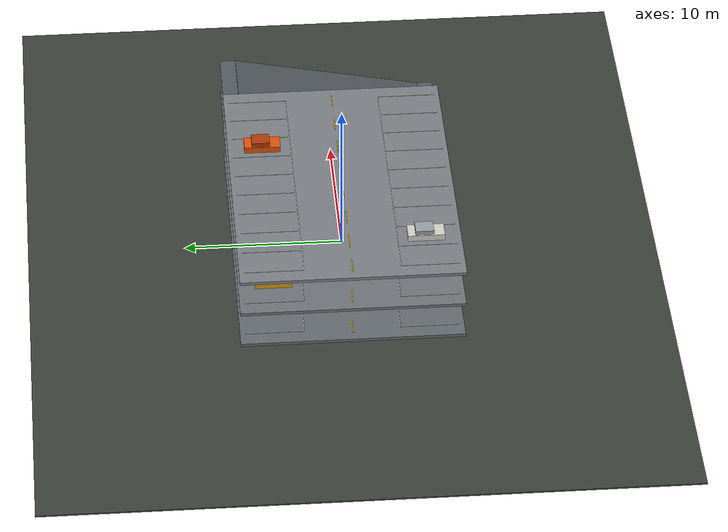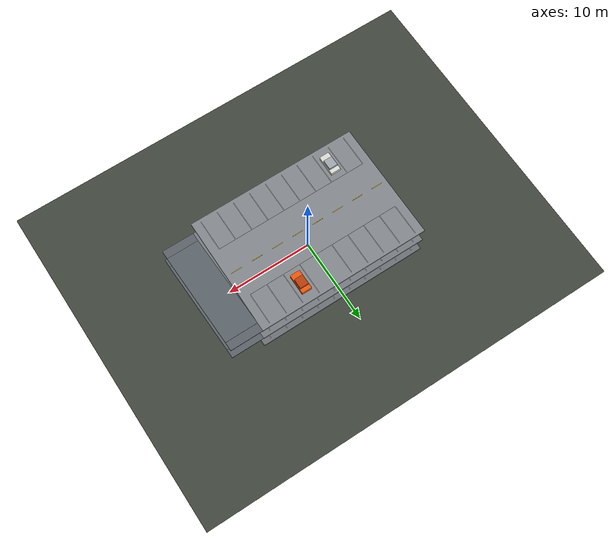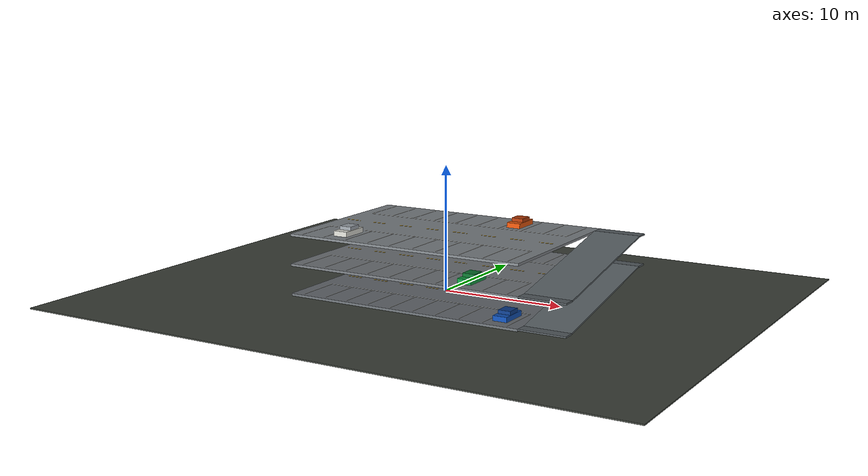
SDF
<sdf version="1.7">
 <world name="three_level_parking_garage">
  <model name="site_ground">
   <static>true</static>
   <link name="ground">
    <pose>0 0 -0.27 0 0 0</pose>
    <collision name="collision"><geometry><box><size>50 40 0.10</size></box></geometry></collision>
    <visual name="visual">
     <geometry><box><size>50 40 0.10</size></box></geometry>
     <material><ambient>0.20 0.22 0.20 1</ambient><diffuse>0.25 0.27 0.24 1</diffuse></material>
    </visual>
   </link>
  </model>
  <model name="three_level_parking_structure">
   <static>true</static>
   <link name="parking_decks">
    <collision name="floor_1_collision">
     <pose>0 0 -0.10 0 0 0</pose>
     <geometry><box><size>20 14 0.20</size></box></geometry>
     <surface><friction><ode><mu>20</mu><mu2>20</mu2></ode></friction></surface>
    </collision>
    <visual name="floor_1_visual">
     <pose>0 0 -0.10 0 0 0</pose>
     <geometry><box><size>20 14 0.20</size></box></geometry>
     <material><ambient>0.36 0.38 0.40 1</ambient><diffuse>0.42 0.44 0.46 1</diffuse></material>
    </visual>
    <collision name="floor_2_collision">
     <pose>0 0 2.30 0 0 0</pose>
     <geometry><box><size>20 14 0.20</size></box></geometry>
     <surface><friction><ode><mu>20</mu><mu2>20</mu2></ode></friction></surface>
    </collision>
    <visual name="floor_2_visual">
     <pose>0 0 2.30 0 0 0</pose>
     <geometry><box><size>20 14 0.20</size></box></geometry>
     <material><ambient>0.40 0.42 0.44 1</ambient><diffuse>0.46 0.48 0.50 1</diffuse></material>
    </visual>
    <collision name="floor_3_collision">
     <pose>0 0 4.70 0 0 0</pose>
     <geometry><box><size>20 14 0.20</size></box></geometry>
     <surface><friction><ode><mu>20</mu><mu2>20</mu2></ode></friction></surface>
    </collision>
    <visual name="floor_3_visual">
     <pose>0 0 4.70 0 0 0</pose>
     <geometry><box><size>20 14 0.20</size></box></geometry>
     <material><ambient>0.45 0.47 0.49 1</ambient><diffuse>0.51 0.53 0.55 1</diffuse></material>
    </visual>
   </link>
   <link name="ramps_and_landings">
    <collision name="ramp_12_collision">
     <pose>11.9 0 1.1412 0 -0.197396 1.570796</pose>
     <geometry><box><size>12.237648 3.8 0.12</size></box></geometry>
     <surface><friction><ode><mu>30</mu><mu2>30</mu2></ode></friction></surface>
    </collision>
    <visual name="ramp_12_visual">
     <pose>11.9 0 1.1412 0 -0.197396 1.570796</pose>
     <geometry><box><size>12.237648 3.8 0.12</size></box></geometry>
     <material><ambient>0.30 0.33 0.35 1</ambient><diffuse>0.35 0.38 0.40 1</diffuse></material>
    </visual>
    <collision name="ramp_23_collision">
     <pose>11.9 0 3.5412 0 -0.197396 1.570796</pose>
     <geometry><box><size>12.237648 3.8 0.12</size></box></geometry>
     <surface><friction><ode><mu>30</mu><mu2>30</mu2></ode></friction></surface>
    </collision>
    <visual name="ramp_23_visual">
     <pose>11.9 0 3.5412 0 -0.197396 1.570796</pose>
     <geometry><box><size>12.237648 3.8 0.12</size></box></geometry>
     <material><ambient>0.30 0.33 0.35 1</ambient><diffuse>0.35 0.38 0.40 1</diffuse></material>
    </visual>
    <collision name="ramp_12_lower_landing_collision">
     <pose>11.9 -6.5 -0.06 0 0 0</pose>
     <geometry><box><size>3.8 1.0 0.12</size></box></geometry>
    </collision>
    <visual name="ramp_12_lower_landing_visual">
     <pose>11.9 -6.5 -0.06 0 0 0</pose>
     <geometry><box><size>3.8 1.0 0.12</size></box></geometry>
     <material><ambient>0.30 0.33 0.35 1</ambient><diffuse>0.35 0.38 0.40 1</diffuse></material>
    </visual>
    <collision name="ramp_12_upper_landing_collision">
     <pose>11.9 6.5 2.34 0 0 0</pose>
     <geometry><box><size>3.8 1.0 0.12</size></box></geometry>
    </collision>
    <visual name="ramp_12_upper_landing_visual">
     <pose>11.9 6.5 2.34 0 0 0</pose>
     <geometry><box><size>3.8 1.0 0.12</size></box></geometry>
     <material><ambient>0.30 0.33 0.35 1</ambient><diffuse>0.35 0.38 0.40 1</diffuse></material>
    </visual>
    <collision name="ramp_23_lower_landing_collision">
     <pose>11.9 -6.5 2.34 0 0 0</pose>
     <geometry><box><size>3.8 1.0 0.12</size></box></geometry>
    </collision>
    <visual name="ramp_23_lower_landing_visual">
     <pose>11.9 -6.5 2.34 0 0 0</pose>
     <geometry><box><size>3.8 1.0 0.12</size></box></geometry>
     <material><ambient>0.30 0.33 0.35 1</ambient><diffuse>0.35 0.38 0.40 1</diffuse></material>
    </visual>
    <collision name="ramp_23_upper_landing_collision">
     <pose>11.9 6.5 4.74 0 0 0</pose>
     <geometry><box><size>3.8 1.0 0.12</size></box></geometry>
    </collision>
    <visual name="ramp_23_upper_landing_visual">
     <pose>11.9 6.5 4.74 0 0 0</pose>
     <geometry><box><size>3.8 1.0 0.12</size></box></geometry>
     <material><ambient>0.30 0.33 0.35 1</ambient><diffuse>0.35 0.38 0.40 1</diffuse></material>
    </visual>
   </link>
  </model>
  <model name="parking_markings">
   <static>true</static>
   <link name="markings">
    <visual name="l1_north_bay_line_1">
     <pose>-9 4.85 0.006 0 0 0</pose>
     <geometry><box><size>0.045 3.70 0.012</size></box></geometry>
     <material>
      <ambient>0.88 0.88 0.84 1</ambient>
      <diffuse>0.98 0.98 0.94 1</diffuse>
      <emissive>0.12 0.12 0.11 1</emissive>
     </material>
    </visual>
    <visual name="l1_north_bay_line_2">
     <pose>-7 4.85 0.006 0 0 0</pose>
     <geometry><box><size>0.045 3.70 0.012</size></box></geometry>
     <material>
      <ambient>0.88 0.88 0.84 1</ambient>
      <diffuse>0.98 0.98 0.94 1</diffuse>
      <emissive>0.12 0.12 0.11 1</emissive>
     </material>
    </visual>
    <visual name="l1_north_bay_line_3">
     <pose>-5 4.85 0.006 0 0 0</pose>
     <geometry><box><size>0.045 3.70 0.012</size></box></geometry>
     <material>
      <ambient>0.88 0.88 0.84 1</ambient>
      <diffuse>0.98 0.98 0.94 1</diffuse>
      <emissive>0.12 0.12 0.11 1</emissive>
     </material>
    </visual>
    <visual name="l1_north_bay_line_4">
     <pose>-3 4.85 0.006 0 0 0</pose>
     <geometry><box><size>0.045 3.70 0.012</size></box></geometry>
     <material>
      <ambient>0.88 0.88 0.84 1</ambient>
      <diffuse>0.98 0.98 0.94 1</diffuse>
      <emissive>0.12 0.12 0.11 1</emissive>
     </material>
    </visual>
    <visual name="l1_north_bay_line_5">
     <pose>-1 4.85 0.006 0 0 0</pose>
     <geometry><box><size>0.045 3.70 0.012</size></box></geometry>
     <material>
      <ambient>0.88 0.88 0.84 1</ambient>
      <diffuse>0.98 0.98 0.94 1</diffuse>
      <emissive>0.12 0.12 0.11 1</emissive>
     </material>
    </visual>
    <visual name="l1_north_bay_line_6">
     <pose>1 4.85 0.006 0 0 0</pose>
     <geometry><box><size>0.045 3.70 0.012</size></box></geometry>
     <material>
      <ambient>0.88 0.88 0.84 1</ambient>
      <diffuse>0.98 0.98 0.94 1</diffuse>
      <emissive>0.12 0.12 0.11 1</emissive>
     </material>
    </visual>
    <visual name="l1_north_bay_line_7">
     <pose>3 4.85 0.006 0 0 0</pose>
     <geometry><box><size>0.045 3.70 0.012</size></box></geometry>
     <material>
      <ambient>0.88 0.88 0.84 1</ambient>
      <diffuse>0.98 0.98 0.94 1</diffuse>
      <emissive>0.12 0.12 0.11 1</emissive>
     </material>
    </visual>
    <visual name="l1_north_bay_line_8">
     <pose>5 4.85 0.006 0 0 0</pose>
     <geometry><box><size>0.045 3.70 0.012</size></box></geometry>
     <material>
      <ambient>0.88 0.88 0.84 1</ambient>
      <diffuse>0.98 0.98 0.94 1</diffuse>
      <emissive>0.12 0.12 0.11 1</emissive>
     </material>
    </visual>
    <visual name="l1_north_bay_line_9">
     <pose>7 4.85 0.006 0 0 0</pose>
     <geometry><box><size>0.045 3.70 0.012</size></box></geometry>
     <material>
      <ambient>0.88 0.88 0.84 1</ambient>
      <diffuse>0.98 0.98 0.94 1</diffuse>
      <emissive>0.12 0.12 0.11 1</emissive>
     </material>
    </visual>
    <visual name="l1_north_bay_line_10">
     <pose>9 4.85 0.006 0 0 0</pose>
     <geometry><box><size>0.045 3.70 0.012</size></box></geometry>
     <material>
      <ambient>0.88 0.88 0.84 1</ambient>
      <diffuse>0.98 0.98 0.94 1</diffuse>
      <emissive>0.12 0.12 0.11 1</emissive>
     </material>
    </visual>
    <visual name="l1_south_bay_line_1">
     <pose>-9 -4.85 0.006 0 0 0</pose>
     <geometry><box><size>0.045 3.70 0.012</size></box></geometry>
     <material>
      <ambient>0.88 0.88 0.84 1</ambient>
      <diffuse>0.98 0.98 0.94 1</diffuse>
      <emissive>0.12 0.12 0.11 1</emissive>
     </material>
    </visual>
    <visual name="l1_south_bay_line_2">
     <pose>-7 -4.85 0.006 0 0 0</pose>
     <geometry><box><size>0.045 3.70 0.012</size></box></geometry>
     <material>
      <ambient>0.88 0.88 0.84 1</ambient>
      <diffuse>0.98 0.98 0.94 1</diffuse>
      <emissive>0.12 0.12 0.11 1</emissive>
     </material>
    </visual>
    <visual name="l1_south_bay_line_3">
     <pose>-5 -4.85 0.006 0 0 0</pose>
     <geometry><box><size>0.045 3.70 0.012</size></box></geometry>
     <material>
      <ambient>0.88 0.88 0.84 1</ambient>
      <diffuse>0.98 0.98 0.94 1</diffuse>
      <emissive>0.12 0.12 0.11 1</emissive>
     </material>
    </visual>
    <visual name="l1_south_bay_line_4">
     <pose>-3 -4.85 0.006 0 0 0</pose>
     <geometry><box><size>0.045 3.70 0.012</size></box></geometry>
     <material>
      <ambient>0.88 0.88 0.84 1</ambient>
      <diffuse>0.98 0.98 0.94 1</diffuse>
      <emissive>0.12 0.12 0.11 1</emissive>
     </material>
    </visual>
    <visual name="l1_south_bay_line_5">
     <pose>-1 -4.85 0.006 0 0 0</pose>
     <geometry><box><size>0.045 3.70 0.012</size></box></geometry>
     <material>
      <ambient>0.88 0.88 0.84 1</ambient>
      <diffuse>0.98 0.98 0.94 1</diffuse>
      <emissive>0.12 0.12 0.11 1</emissive>
     </material>
    </visual>
    <visual name="l1_south_bay_line_6">
     <pose>1 -4.85 0.006 0 0 0</pose>
     <geometry><box><size>0.045 3.70 0.012</size></box></geometry>
     <material>
      <ambient>0.88 0.88 0.84 1</ambient>
      <diffuse>0.98 0.98 0.94 1</diffuse>
      <emissive>0.12 0.12 0.11 1</emissive>
     </material>
    </visual>
    <visual name="l1_south_bay_line_7">
     <pose>3 -4.85 0.006 0 0 0</pose>
     <geometry><box><size>0.045 3.70 0.012</size></box></geometry>
     <material>
      <ambient>0.88 0.88 0.84 1</ambient>
      <diffuse>0.98 0.98 0.94 1</diffuse>
      <emissive>0.12 0.12 0.11 1</emissive>
     </material>
    </visual>
    <visual name="l1_south_bay_line_8">
     <pose>5 -4.85 0.006 0 0 0</pose>
     <geometry><box><size>0.045 3.70 0.012</size></box></geometry>
     <material>
      <ambient>0.88 0.88 0.84 1</ambient>
      <diffuse>0.98 0.98 0.94 1</diffuse>
      <emissive>0.12 0.12 0.11 1</emissive>
     </material>
    </visual>
    <visual name="l1_south_bay_line_9">
     <pose>7 -4.85 0.006 0 0 0</pose>
     <geometry><box><size>0.045 3.70 0.012</size></box></geometry>
     <material>
      <ambient>0.88 0.88 0.84 1</ambient>
      <diffuse>0.98 0.98 0.94 1</diffuse>
      <emissive>0.12 0.12 0.11 1</emissive>
     </material>
    </visual>
    <visual name="l1_south_bay_line_10">
     <pose>9 -4.85 0.006 0 0 0</pose>
     <geometry><box><size>0.045 3.70 0.012</size></box></geometry>
     <material>
      <ambient>0.88 0.88 0.84 1</ambient>
      <diffuse>0.98 0.98 0.94 1</diffuse>
      <emissive>0.12 0.12 0.11 1</emissive>
     </material>
    </visual>
    <visual name="l1_north_stop_line">
     <pose>0 3.0 0.006 0 0 0</pose>
     <geometry><box><size>18.0 0.045 0.012</size></box></geometry>
     <material>
      <ambient>0.88 0.88 0.84 1</ambient>
      <diffuse>0.98 0.98 0.94 1</diffuse>
      <emissive>0.12 0.12 0.11 1</emissive>
     </material>
    </visual>
    <visual name="l1_south_stop_line">
     <pose>0 -3.0 0.006 0 0 0</pose>
     <geometry><box><size>18.0 0.045 0.012</size></box></geometry>
     <material>
      <ambient>0.88 0.88 0.84 1</ambient>
      <diffuse>0.98 0.98 0.94 1</diffuse>
      <emissive>0.12 0.12 0.11 1</emissive>
     </material>
    </visual>
    <visual name="l1_aisle_dash_1">
     <pose>-8.75 0 0.006 0 0 0</pose>
     <geometry><box><size>1.25 0.065 0.012</size></box></geometry>
     <material>
      <ambient>0.72 0.55 0.05 1</ambient>
      <diffuse>0.95 0.73 0.08 1</diffuse>
      <emissive>0.10 0.07 0.01 1</emissive>
     </material>
    </visual>
    <visual name="l1_aisle_dash_2">
     <pose>-6.25 0 0.006 0 0 0</pose>
     <geometry><box><size>1.25 0.065 0.012</size></box></geometry>
     <material>
      <ambient>0.72 0.55 0.05 1</ambient>
      <diffuse>0.95 0.73 0.08 1</diffuse>
      <emissive>0.10 0.07 0.01 1</emissive>
     </material>
    </visual>
    <visual name="l1_aisle_dash_3">
     <pose>-3.75 0 0.006 0 0 0</pose>
     <geometry><box><size>1.25 0.065 0.012</size></box></geometry>
     <material>
      <ambient>0.72 0.55 0.05 1</ambient>
      <diffuse>0.95 0.73 0.08 1</diffuse>
      <emissive>0.10 0.07 0.01 1</emissive>
     </material>
    </visual>
    <visual name="l1_aisle_dash_4">
     <pose>-1.25 0 0.006 0 0 0</pose>
     <geometry><box><size>1.25 0.065 0.012</size></box></geometry>
     <material>
      <ambient>0.72 0.55 0.05 1</ambient>
      <diffuse>0.95 0.73 0.08 1</diffuse>
      <emissive>0.10 0.07 0.01 1</emissive>
     </material>
    </visual>
    <visual name="l1_aisle_dash_5">
     <pose>1.25 0 0.006 0 0 0</pose>
     <geometry><box><size>1.25 0.065 0.012</size></box></geometry>
     <material>
      <ambient>0.72 0.55 0.05 1</ambient>
      <diffuse>0.95 0.73 0.08 1</diffuse>
      <emissive>0.10 0.07 0.01 1</emissive>
     </material>
    </visual>
    <visual name="l1_aisle_dash_6">
     <pose>3.75 0 0.006 0 0 0</pose>
     <geometry><box><size>1.25 0.065 0.012</size></box></geometry>
     <material>
      <ambient>0.72 0.55 0.05 1</ambient>
      <diffuse>0.95 0.73 0.08 1</diffuse>
      <emissive>0.10 0.07 0.01 1</emissive>
     </material>
    </visual>
    <visual name="l1_aisle_dash_7">
     <pose>6.25 0 0.006 0 0 0</pose>
     <geometry><box><size>1.25 0.065 0.012</size></box></geometry>
     <material>
      <ambient>0.72 0.55 0.05 1</ambient>
      <diffuse>0.95 0.73 0.08 1</diffuse>
      <emissive>0.10 0.07 0.01 1</emissive>
     </material>
    </visual>
    <visual name="l1_aisle_dash_8">
     <pose>8.75 0 0.006 0 0 0</pose>
     <geometry><box><size>1.25 0.065 0.012</size></box></geometry>
     <material>
      <ambient>0.72 0.55 0.05 1</ambient>
      <diffuse>0.95 0.73 0.08 1</diffuse>
      <emissive>0.10 0.07 0.01 1</emissive>
     </material>
    </visual>
    <visual name="l2_north_bay_line_1">
     <pose>-9 4.85 2.406 0 0 0</pose>
     <geometry><box><size>0.045 3.70 0.012</size></box></geometry>
     <material>
      <ambient>0.88 0.88 0.84 1</ambient>
      <diffuse>0.98 0.98 0.94 1</diffuse>
      <emissive>0.12 0.12 0.11 1</emissive>
     </material>
    </visual>
    <visual name="l2_north_bay_line_2">
     <pose>-7 4.85 2.406 0 0 0</pose>
     <geometry><box><size>0.045 3.70 0.012</size></box></geometry>
     <material>
      <ambient>0.88 0.88 0.84 1</ambient>
      <diffuse>0.98 0.98 0.94 1</diffuse>
      <emissive>0.12 0.12 0.11 1</emissive>
     </material>
    </visual>
    <visual name="l2_north_bay_line_3">
     <pose>-5 4.85 2.406 0 0 0</pose>
     <geometry><box><size>0.045 3.70 0.012</size></box></geometry>
     <material>
      <ambient>0.88 0.88 0.84 1</ambient>
      <diffuse>0.98 0.98 0.94 1</diffuse>
      <emissive>0.12 0.12 0.11 1</emissive>
     </material>
    </visual>
    <visual name="l2_north_bay_line_4">
     <pose>-3 4.85 2.406 0 0 0</pose>
     <geometry><box><size>0.045 3.70 0.012</size></box></geometry>
     <material>
      <ambient>0.88 0.88 0.84 1</ambient>
      <diffuse>0.98 0.98 0.94 1</diffuse>
      <emissive>0.12 0.12 0.11 1</emissive>
     </material>
    </visual>
    <visual name="l2_north_bay_line_5">
     <pose>-1 4.85 2.406 0 0 0</pose>
     <geometry><box><size>0.045 3.70 0.012</size></box></geometry>
     <material>
      <ambient>0.88 0.88 0.84 1</ambient>
      <diffuse>0.98 0.98 0.94 1</diffuse>
      <emissive>0.12 0.12 0.11 1</emissive>
     </material>
    </visual>
    <visual name="l2_north_bay_line_6">
     <pose>1 4.85 2.406 0 0 0</pose>
     <geometry><box><size>0.045 3.70 0.012</size></box></geometry>
     <material>
      <ambient>0.88 0.88 0.84 1</ambient>
      <diffuse>0.98 0.98 0.94 1</diffuse>
      <emissive>0.12 0.12 0.11 1</emissive>
     </material>
    </visual>
    <visual name="l2_north_bay_line_7">
     <pose>3 4.85 2.406 0 0 0</pose>
     <geometry><box><size>0.045 3.70 0.012</size></box></geometry>
     <material>
      <ambient>0.88 0.88 0.84 1</ambient>
      <diffuse>0.98 0.98 0.94 1</diffuse>
      <emissive>0.12 0.12 0.11 1</emissive>
     </material>
    </visual>
    <visual name="l2_north_bay_line_8">
     <pose>5 4.85 2.406 0 0 0</pose>
     <geometry><box><size>0.045 3.70 0.012</size></box></geometry>
     <material>
      <ambient>0.88 0.88 0.84 1</ambient>
      <diffuse>0.98 0.98 0.94 1</diffuse>
      <emissive>0.12 0.12 0.11 1</emissive>
     </material>
    </visual>
    <visual name="l2_north_bay_line_9">
     <pose>7 4.85 2.406 0 0 0</pose>
     <geometry><box><size>0.045 3.70 0.012</size></box></geometry>
     <material>
      <ambient>0.88 0.88 0.84 1</ambient>
      <diffuse>0.98 0.98 0.94 1</diffuse>
      <emissive>0.12 0.12 0.11 1</emissive>
     </material>
    </visual>
    <visual name="l2_north_bay_line_10">
     <pose>9 4.85 2.406 0 0 0</pose>
     <geometry><box><size>0.045 3.70 0.012</size></box></geometry>
     <material>
      <ambient>0.88 0.88 0.84 1</ambient>
      <diffuse>0.98 0.98 0.94 1</diffuse>
      <emissive>0.12 0.12 0.11 1</emissive>
     </material>
    </visual>
    <visual name="l2_south_bay_line_1">
     <pose>-9 -4.85 2.406 0 0 0</pose>
     <geometry><box><size>0.045 3.70 0.012</size></box></geometry>
     <material>
      <ambient>0.88 0.88 0.84 1</ambient>
      <diffuse>0.98 0.98 0.94 1</diffuse>
      <emissive>0.12 0.12 0.11 1</emissive>
     </material>
    </visual>
    <visual name="l2_south_bay_line_2">
     <pose>-7 -4.85 2.406 0 0 0</pose>
     <geometry><box><size>0.045 3.70 0.012</size></box></geometry>
     <material>
      <ambient>0.88 0.88 0.84 1</ambient>
      <diffuse>0.98 0.98 0.94 1</diffuse>
      <emissive>0.12 0.12 0.11 1</emissive>
     </material>
    </visual>
    <visual name="l2_south_bay_line_3">
     <pose>-5 -4.85 2.406 0 0 0</pose>
     <geometry><box><size>0.045 3.70 0.012</size></box></geometry>
     <material>
      <ambient>0.88 0.88 0.84 1</ambient>
      <diffuse>0.98 0.98 0.94 1</diffuse>
      <emissive>0.12 0.12 0.11 1</emissive>
     </material>
    </visual>
    <visual name="l2_south_bay_line_4">
     <pose>-3 -4.85 2.406 0 0 0</pose>
     <geometry><box><size>0.045 3.70 0.012</size></box></geometry>
     <material>
      <ambient>0.88 0.88 0.84 1</ambient>
      <diffuse>0.98 0.98 0.94 1</diffuse>
      <emissive>0.12 0.12 0.11 1</emissive>
     </material>
    </visual>
    <visual name="l2_south_bay_line_5">
     <pose>-1 -4.85 2.406 0 0 0</pose>
     <geometry><box><size>0.045 3.70 0.012</size></box></geometry>
     <material>
      <ambient>0.88 0.88 0.84 1</ambient>
      <diffuse>0.98 0.98 0.94 1</diffuse>
      <emissive>0.12 0.12 0.11 1</emissive>
     </material>
    </visual>
    <visual name="l2_south_bay_line_6">
     <pose>1 -4.85 2.406 0 0 0</pose>
     <geometry><box><size>0.045 3.70 0.012</size></box></geometry>
     <material>
      <ambient>0.88 0.88 0.84 1</ambient>
      <diffuse>0.98 0.98 0.94 1</diffuse>
      <emissive>0.12 0.12 0.11 1</emissive>
     </material>
    </visual>
    <visual name="l2_south_bay_line_7">
     <pose>3 -4.85 2.406 0 0 0</pose>
     <geometry><box><size>0.045 3.70 0.012</size></box></geometry>
     <material>
      <ambient>0.88 0.88 0.84 1</ambient>
      <diffuse>0.98 0.98 0.94 1</diffuse>
      <emissive>0.12 0.12 0.11 1</emissive>
     </material>
    </visual>
    <visual name="l2_south_bay_line_8">
     <pose>5 -4.85 2.406 0 0 0</pose>
     <geometry><box><size>0.045 3.70 0.012</size></box></geometry>
     <material>
      <ambient>0.88 0.88 0.84 1</ambient>
      <diffuse>0.98 0.98 0.94 1</diffuse>
      <emissive>0.12 0.12 0.11 1</emissive>
     </material>
    </visual>
    <visual name="l2_south_bay_line_9">
     <pose>7 -4.85 2.406 0 0 0</pose>
     <geometry><box><size>0.045 3.70 0.012</size></box></geometry>
     <material>
      <ambient>0.88 0.88 0.84 1</ambient>
      <diffuse>0.98 0.98 0.94 1</diffuse>
      <emissive>0.12 0.12 0.11 1</emissive>
     </material>
    </visual>
    <visual name="l2_south_bay_line_10">
     <pose>9 -4.85 2.406 0 0 0</pose>
     <geometry><box><size>0.045 3.70 0.012</size></box></geometry>
     <material>
      <ambient>0.88 0.88 0.84 1</ambient>
      <diffuse>0.98 0.98 0.94 1</diffuse>
      <emissive>0.12 0.12 0.11 1</emissive>
     </material>
    </visual>
    <visual name="l2_north_stop_line">
     <pose>0 3.0 2.406 0 0 0</pose>
     <geometry><box><size>18.0 0.045 0.012</size></box></geometry>
     <material>
      <ambient>0.88 0.88 0.84 1</ambient>
      <diffuse>0.98 0.98 0.94 1</diffuse>
      <emissive>0.12 0.12 0.11 1</emissive>
     </material>
    </visual>
    <visual name="l2_south_stop_line">
     <pose>0 -3.0 2.406 0 0 0</pose>
     <geometry><box><size>18.0 0.045 0.012</size></box></geometry>
     <material>
      <ambient>0.88 0.88 0.84 1</ambient>
      <diffuse>0.98 0.98 0.94 1</diffuse>
      <emissive>0.12 0.12 0.11 1</emissive>
     </material>
    </visual>
    <visual name="l2_aisle_dash_1">
     <pose>-8.75 0 2.406 0 0 0</pose>
     <geometry><box><size>1.25 0.065 0.012</size></box></geometry>
     <material>
      <ambient>0.72 0.55 0.05 1</ambient>
      <diffuse>0.95 0.73 0.08 1</diffuse>
      <emissive>0.10 0.07 0.01 1</emissive>
     </material>
    </visual>
    <visual name="l2_aisle_dash_2">
     <pose>-6.25 0 2.406 0 0 0</pose>
     <geometry><box><size>1.25 0.065 0.012</size></box></geometry>
     <material>
      <ambient>0.72 0.55 0.05 1</ambient>
      <diffuse>0.95 0.73 0.08 1</diffuse>
      <emissive>0.10 0.07 0.01 1</emissive>
     </material>
    </visual>
    <visual name="l2_aisle_dash_3">
     <pose>-3.75 0 2.406 0 0 0</pose>
     <geometry><box><size>1.25 0.065 0.012</size></box></geometry>
     <material>
      <ambient>0.72 0.55 0.05 1</ambient>
      <diffuse>0.95 0.73 0.08 1</diffuse>
      <emissive>0.10 0.07 0.01 1</emissive>
     </material>
    </visual>
    <visual name="l2_aisle_dash_4">
     <pose>-1.25 0 2.406 0 0 0</pose>
     <geometry><box><size>1.25 0.065 0.012</size></box></geometry>
     <material>
      <ambient>0.72 0.55 0.05 1</ambient>
      <diffuse>0.95 0.73 0.08 1</diffuse>
      <emissive>0.10 0.07 0.01 1</emissive>
     </material>
    </visual>
    <visual name="l2_aisle_dash_5">
     <pose>1.25 0 2.406 0 0 0</pose>
     <geometry><box><size>1.25 0.065 0.012</size></box></geometry>
     <material>
      <ambient>0.72 0.55 0.05 1</ambient>
      <diffuse>0.95 0.73 0.08 1</diffuse>
      <emissive>0.10 0.07 0.01 1</emissive>
     </material>
    </visual>
    <visual name="l2_aisle_dash_6">
     <pose>3.75 0 2.406 0 0 0</pose>
     <geometry><box><size>1.25 0.065 0.012</size></box></geometry>
     <material>
      <ambient>0.72 0.55 0.05 1</ambient>
      <diffuse>0.95 0.73 0.08 1</diffuse>
      <emissive>0.10 0.07 0.01 1</emissive>
     </material>
    </visual>
    <visual name="l2_aisle_dash_7">
     <pose>6.25 0 2.406 0 0 0</pose>
     <geometry><box><size>1.25 0.065 0.012</size></box></geometry>
     <material>
      <ambient>0.72 0.55 0.05 1</ambient>
      <diffuse>0.95 0.73 0.08 1</diffuse>
      <emissive>0.10 0.07 0.01 1</emissive>
     </material>
    </visual>
    <visual name="l2_aisle_dash_8">
     <pose>8.75 0 2.406 0 0 0</pose>
     <geometry><box><size>1.25 0.065 0.012</size></box></geometry>
     <material>
      <ambient>0.72 0.55 0.05 1</ambient>
      <diffuse>0.95 0.73 0.08 1</diffuse>
      <emissive>0.10 0.07 0.01 1</emissive>
     </material>
    </visual>
    <visual name="l3_north_bay_line_1">
     <pose>-9 4.85 4.806 0 0 0</pose>
     <geometry><box><size>0.045 3.70 0.012</size></box></geometry>
     <material>
      <ambient>0.88 0.88 0.84 1</ambient>
      <diffuse>0.98 0.98 0.94 1</diffuse>
      <emissive>0.12 0.12 0.11 1</emissive>
     </material>
    </visual>
    <visual name="l3_north_bay_line_2">
     <pose>-7 4.85 4.806 0 0 0</pose>
     <geometry><box><size>0.045 3.70 0.012</size></box></geometry>
     <material>
      <ambient>0.88 0.88 0.84 1</ambient>
      <diffuse>0.98 0.98 0.94 1</diffuse>
      <emissive>0.12 0.12 0.11 1</emissive>
     </material>
    </visual>
    <visual name="l3_north_bay_line_3">
     <pose>-5 4.85 4.806 0 0 0</pose>
     <geometry><box><size>0.045 3.70 0.012</size></box></geometry>
     <material>
      <ambient>0.88 0.88 0.84 1</ambient>
      <diffuse>0.98 0.98 0.94 1</diffuse>
      <emissive>0.12 0.12 0.11 1</emissive>
     </material>
    </visual>
    <visual name="l3_north_bay_line_4">
     <pose>-3 4.85 4.806 0 0 0</pose>
     <geometry><box><size>0.045 3.70 0.012</size></box></geometry>
     <material>
      <ambient>0.88 0.88 0.84 1</ambient>
      <diffuse>0.98 0.98 0.94 1</diffuse>
      <emissive>0.12 0.12 0.11 1</emissive>
     </material>
    </visual>
    <visual name="l3_north_bay_line_5">
     <pose>-1 4.85 4.806 0 0 0</pose>
     <geometry><box><size>0.045 3.70 0.012</size></box></geometry>
     <material>
      <ambient>0.88 0.88 0.84 1</ambient>
      <diffuse>0.98 0.98 0.94 1</diffuse>
      <emissive>0.12 0.12 0.11 1</emissive>
     </material>
    </visual>
    <visual name="l3_north_bay_line_6">
     <pose>1 4.85 4.806 0 0 0</pose>
     <geometry><box><size>0.045 3.70 0.012</size></box></geometry>
     <material>
      <ambient>0.88 0.88 0.84 1</ambient>
      <diffuse>0.98 0.98 0.94 1</diffuse>
      <emissive>0.12 0.12 0.11 1</emissive>
     </material>
    </visual>
    <visual name="l3_north_bay_line_7">
     <pose>3 4.85 4.806 0 0 0</pose>
     <geometry><box><size>0.045 3.70 0.012</size></box></geometry>
     <material>
      <ambient>0.88 0.88 0.84 1</ambient>
      <diffuse>0.98 0.98 0.94 1</diffuse>
      <emissive>0.12 0.12 0.11 1</emissive>
     </material>
    </visual>
    <visual name="l3_north_bay_line_8">
     <pose>5 4.85 4.806 0 0 0</pose>
     <geometry><box><size>0.045 3.70 0.012</size></box></geometry>
     <material>
      <ambient>0.88 0.88 0.84 1</ambient>
      <diffuse>0.98 0.98 0.94 1</diffuse>
      <emissive>0.12 0.12 0.11 1</emissive>
     </material>
    </visual>
    <visual name="l3_north_bay_line_9">
     <pose>7 4.85 4.806 0 0 0</pose>
     <geometry><box><size>0.045 3.70 0.012</size></box></geometry>
     <material>
      <ambient>0.88 0.88 0.84 1</ambient>
      <diffuse>0.98 0.98 0.94 1</diffuse>
      <emissive>0.12 0.12 0.11 1</emissive>
     </material>
    </visual>
    <visual name="l3_north_bay_line_10">
     <pose>9 4.85 4.806 0 0 0</pose>
     <geometry><box><size>0.045 3.70 0.012</size></box></geometry>
     <material>
      <ambient>0.88 0.88 0.84 1</ambient>
      <diffuse>0.98 0.98 0.94 1</diffuse>
      <emissive>0.12 0.12 0.11 1</emissive>
     </material>
    </visual>
    <visual name="l3_south_bay_line_1">
     <pose>-9 -4.85 4.806 0 0 0</pose>
     <geometry><box><size>0.045 3.70 0.012</size></box></geometry>
     <material>
      <ambient>0.88 0.88 0.84 1</ambient>
      <diffuse>0.98 0.98 0.94 1</diffuse>
      <emissive>0.12 0.12 0.11 1</emissive>
     </material>
    </visual>
    <visual name="l3_south_bay_line_2">
     <pose>-7 -4.85 4.806 0 0 0</pose>
     <geometry><box><size>0.045 3.70 0.012</size></box></geometry>
     <material>
      <ambient>0.88 0.88 0.84 1</ambient>
      <diffuse>0.98 0.98 0.94 1</diffuse>
      <emissive>0.12 0.12 0.11 1</emissive>
     </material>
    </visual>
    <visual name="l3_south_bay_line_3">
     <pose>-5 -4.85 4.806 0 0 0</pose>
     <geometry><box><size>0.045 3.70 0.012</size></box></geometry>
     <material>
      <ambient>0.88 0.88 0.84 1</ambient>
      <diffuse>0.98 0.98 0.94 1</diffuse>
      <emissive>0.12 0.12 0.11 1</emissive>
     </material>
    </visual>
    <visual name="l3_south_bay_line_4">
     <pose>-3 -4.85 4.806 0 0 0</pose>
     <geometry><box><size>0.045 3.70 0.012</size></box></geometry>
     <material>
      <ambient>0.88 0.88 0.84 1</ambient>
      <diffuse>0.98 0.98 0.94 1</diffuse>
      <emissive>0.12 0.12 0.11 1</emissive>
     </material>
    </visual>
    <visual name="l3_south_bay_line_5">
     <pose>-1 -4.85 4.806 0 0 0</pose>
     <geometry><box><size>0.045 3.70 0.012</size></box></geometry>
     <material>
      <ambient>0.88 0.88 0.84 1</ambient>
      <diffuse>0.98 0.98 0.94 1</diffuse>
      <emissive>0.12 0.12 0.11 1</emissive>
     </material>
    </visual>
    <visual name="l3_south_bay_line_6">
     <pose>1 -4.85 4.806 0 0 0</pose>
     <geometry><box><size>0.045 3.70 0.012</size></box></geometry>
     <material>
      <ambient>0.88 0.88 0.84 1</ambient>
      <diffuse>0.98 0.98 0.94 1</diffuse>
      <emissive>0.12 0.12 0.11 1</emissive>
     </material>
    </visual>
    <visual name="l3_south_bay_line_7">
     <pose>3 -4.85 4.806 0 0 0</pose>
     <geometry><box><size>0.045 3.70 0.012</size></box></geometry>
     <material>
      <ambient>0.88 0.88 0.84 1</ambient>
      <diffuse>0.98 0.98 0.94 1</diffuse>
      <emissive>0.12 0.12 0.11 1</emissive>
     </material>
    </visual>
    <visual name="l3_south_bay_line_8">
     <pose>5 -4.85 4.806 0 0 0</pose>
     <geometry><box><size>0.045 3.70 0.012</size></box></geometry>
     <material>
      <ambient>0.88 0.88 0.84 1</ambient>
      <diffuse>0.98 0.98 0.94 1</diffuse>
      <emissive>0.12 0.12 0.11 1</emissive>
     </material>
    </visual>
    <visual name="l3_south_bay_line_9">
     <pose>7 -4.85 4.806 0 0 0</pose>
     <geometry><box><size>0.045 3.70 0.012</size></box></geometry>
     <material>
      <ambient>0.88 0.88 0.84 1</ambient>
      <diffuse>0.98 0.98 0.94 1</diffuse>
      <emissive>0.12 0.12 0.11 1</emissive>
     </material>
    </visual>
    <visual name="l3_south_bay_line_10">
     <pose>9 -4.85 4.806 0 0 0</pose>
     <geometry><box><size>0.045 3.70 0.012</size></box></geometry>
     <material>
      <ambient>0.88 0.88 0.84 1</ambient>
      <diffuse>0.98 0.98 0.94 1</diffuse>
      <emissive>0.12 0.12 0.11 1</emissive>
     </material>
    </visual>
    <visual name="l3_north_stop_line">
     <pose>0 3.0 4.806 0 0 0</pose>
     <geometry><box><size>18.0 0.045 0.012</size></box></geometry>
     <material>
      <ambient>0.88 0.88 0.84 1</ambient>
      <diffuse>0.98 0.98 0.94 1</diffuse>
      <emissive>0.12 0.12 0.11 1</emissive>
     </material>
    </visual>
    <visual name="l3_south_stop_line">
     <pose>0 -3.0 4.806 0 0 0</pose>
     <geometry><box><size>18.0 0.045 0.012</size></box></geometry>
     <material>
      <ambient>0.88 0.88 0.84 1</ambient>
      <diffuse>0.98 0.98 0.94 1</diffuse>
      <emissive>0.12 0.12 0.11 1</emissive>
     </material>
    </visual>
    <visual name="l3_aisle_dash_1">
     <pose>-8.75 0 4.806 0 0 0</pose>
     <geometry><box><size>1.25 0.065 0.012</size></box></geometry>
     <material>
      <ambient>0.72 0.55 0.05 1</ambient>
      <diffuse>0.95 0.73 0.08 1</diffuse>
      <emissive>0.10 0.07 0.01 1</emissive>
     </material>
    </visual>
    <visual name="l3_aisle_dash_2">
     <pose>-6.25 0 4.806 0 0 0</pose>
     <geometry><box><size>1.25 0.065 0.012</size></box></geometry>
     <material>
      <ambient>0.72 0.55 0.05 1</ambient>
      <diffuse>0.95 0.73 0.08 1</diffuse>
      <emissive>0.10 0.07 0.01 1</emissive>
     </material>
    </visual>
    <visual name="l3_aisle_dash_3">
     <pose>-3.75 0 4.806 0 0 0</pose>
     <geometry><box><size>1.25 0.065 0.012</size></box></geometry>
     <material>
      <ambient>0.72 0.55 0.05 1</ambient>
      <diffuse>0.95 0.73 0.08 1</diffuse>
      <emissive>0.10 0.07 0.01 1</emissive>
     </material>
    </visual>
    <visual name="l3_aisle_dash_4">
     <pose>-1.25 0 4.806 0 0 0</pose>
     <geometry><box><size>1.25 0.065 0.012</size></box></geometry>
     <material>
      <ambient>0.72 0.55 0.05 1</ambient>
      <diffuse>0.95 0.73 0.08 1</diffuse>
      <emissive>0.10 0.07 0.01 1</emissive>
     </material>
    </visual>
    <visual name="l3_aisle_dash_5">
     <pose>1.25 0 4.806 0 0 0</pose>
     <geometry><box><size>1.25 0.065 0.012</size></box></geometry>
     <material>
      <ambient>0.72 0.55 0.05 1</ambient>
      <diffuse>0.95 0.73 0.08 1</diffuse>
      <emissive>0.10 0.07 0.01 1</emissive>
     </material>
    </visual>
    <visual name="l3_aisle_dash_6">
     <pose>3.75 0 4.806 0 0 0</pose>
     <geometry><box><size>1.25 0.065 0.012</size></box></geometry>
     <material>
      <ambient>0.72 0.55 0.05 1</ambient>
      <diffuse>0.95 0.73 0.08 1</diffuse>
      <emissive>0.10 0.07 0.01 1</emissive>
     </material>
    </visual>
    <visual name="l3_aisle_dash_7">
     <pose>6.25 0 4.806 0 0 0</pose>
     <geometry><box><size>1.25 0.065 0.012</size></box></geometry>
     <material>
      <ambient>0.72 0.55 0.05 1</ambient>
      <diffuse>0.95 0.73 0.08 1</diffuse>
      <emissive>0.10 0.07 0.01 1</emissive>
     </material>
    </visual>
    <visual name="l3_aisle_dash_8">
     <pose>8.75 0 4.806 0 0 0</pose>
     <geometry><box><size>1.25 0.065 0.012</size></box></geometry>
     <material>
      <ambient>0.72 0.55 0.05 1</ambient>
      <diffuse>0.95 0.73 0.08 1</diffuse>
      <emissive>0.10 0.07 0.01 1</emissive>
     </material>
    </visual>
   </link>
  </model>
  <model name="parked_vehicles">
   <static>true</static>
   <link name="level_1_red_car">
    <pose>6.0 4.8 0.20 0 0 0</pose>
    <collision name="collision"><geometry><box><size>1.15 2.30 0.40</size></box></geometry></collision>
    <visual name="body">
     <geometry><box><size>1.15 2.30 0.40</size></box></geometry>
     <material><ambient>0.55 0.05 0.04 1</ambient><diffuse>0.78 0.08 0.06 1</diffuse></material>
    </visual>
    <visual name="cabin">
     <pose>0 0.10 0.32 0 0 0</pose>
     <geometry><box><size>1.00 1.15 0.32</size></box></geometry>
     <material><ambient>0.35 0.05 0.04 1</ambient><diffuse>0.62 0.08 0.06 1</diffuse></material>
    </visual>
   </link>
   <link name="level_1_blue_car">
    <pose>8.0 -4.8 0.20 0 0 0</pose>
    <collision name="collision"><geometry><box><size>1.15 2.30 0.40</size></box></geometry></collision>
    <visual name="body">
     <geometry><box><size>1.15 2.30 0.40</size></box></geometry>
     <material><ambient>0.04 0.20 0.48 1</ambient><diffuse>0.06 0.32 0.72 1</diffuse></material>
    </visual>
    <visual name="cabin">
     <pose>0 0.10 0.32 0 0 0</pose>
     <geometry><box><size>1.00 1.15 0.32</size></box></geometry>
     <material><ambient>0.03 0.12 0.31 1</ambient><diffuse>0.05 0.24 0.55 1</diffuse></material>
    </visual>
   </link>
   <link name="level_2_yellow_car">
    <pose>-7.0 4.8 2.60 0 0 0</pose>
    <collision name="collision"><geometry><box><size>1.15 2.30 0.40</size></box></geometry></collision>
    <visual name="body">
     <geometry><box><size>1.15 2.30 0.40</size></box></geometry>
     <material><ambient>0.60 0.42 0.03 1</ambient><diffuse>0.88 0.63 0.06 1</diffuse></material>
    </visual>
    <visual name="cabin">
     <pose>0 0.10 0.32 0 0 0</pose>
     <geometry><box><size>1.00 1.15 0.32</size></box></geometry>
     <material><ambient>0.42 0.27 0.02 1</ambient><diffuse>0.68 0.44 0.04 1</diffuse></material>
    </visual>
   </link>
   <link name="level_2_green_car">
    <pose>5.0 -4.8 2.60 0 0 0</pose>
    <collision name="collision"><geometry><box><size>1.15 2.30 0.40</size></box></geometry></collision>
    <visual name="body">
     <geometry><box><size>1.15 2.30 0.40</size></box></geometry>
     <material><ambient>0.04 0.38 0.16 1</ambient><diffuse>0.06 0.62 0.25 1</diffuse></material>
    </visual>
    <visual name="cabin">
     <pose>0 0.10 0.32 0 0 0</pose>
     <geometry><box><size>1.00 1.15 0.32</size></box></geometry>
     <material><ambient>0.03 0.25 0.11 1</ambient><diffuse>0.05 0.46 0.19 1</diffuse></material>
    </visual>
   </link>
   <link name="level_3_white_car">
    <pose>-6.0 -4.8 5.00 0 0 0</pose>
    <collision name="collision"><geometry><box><size>1.15 2.30 0.40</size></box></geometry></collision>
    <visual name="body">
     <geometry><box><size>1.15 2.30 0.40</size></box></geometry>
     <material><ambient>0.68 0.68 0.66 1</ambient><diffuse>0.86 0.86 0.83 1</diffuse></material>
    </visual>
    <visual name="cabin">
     <pose>0 0.10 0.32 0 0 0</pose>
     <geometry><box><size>1.00 1.15 0.32</size></box></geometry>
     <material><ambient>0.43 0.45 0.47 1</ambient><diffuse>0.62 0.65 0.68 1</diffuse></material>
    </visual>
   </link>
   <link name="level_3_orange_car">
    <pose>4.0 4.8 5.00 0 0 0</pose>
    <collision name="collision"><geometry><box><size>1.15 2.30 0.40</size></box></geometry></collision>
    <visual name="body">
     <geometry><box><size>1.15 2.30 0.40</size></box></geometry>
     <material><ambient>0.65 0.22 0.03 1</ambient><diffuse>0.92 0.34 0.05 1</diffuse></material>
    </visual>
    <visual name="cabin">
     <pose>0 0.10 0.32 0 0 0</pose>
     <geometry><box><size>1.00 1.15 0.32</size></box></geometry>
     <material><ambient>0.46 0.14 0.02 1</ambient><diffuse>0.72 0.24 0.04 1</diffuse></material>
    </visual>
   </link>
  </model>
 </world>
</sdf>
